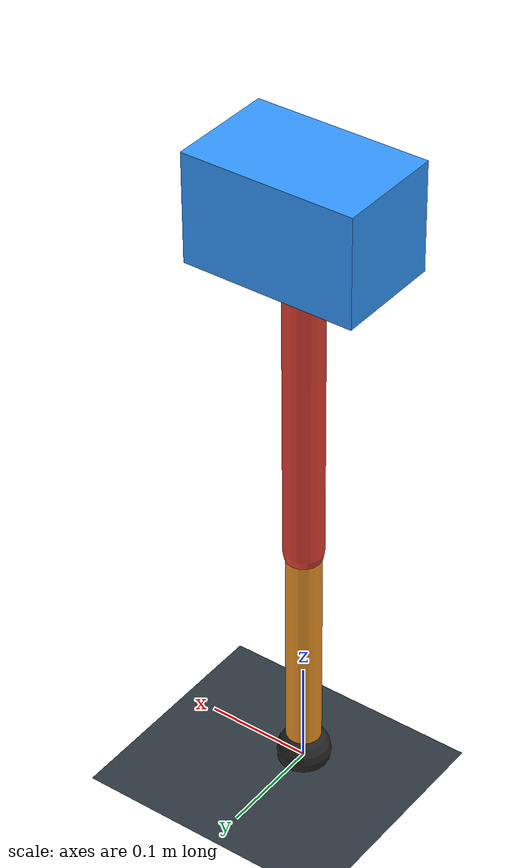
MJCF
<mujoco model="single_axis_two_bar">
  <compiler angle="radian" inertiafromgeom="true"/>
  <option timestep="0.001" integrator="implicitfast" gravity="0 0 -9.81"/>
  <default>
    <joint damping="0.08"/>
    <geom friction="1.2 0.01 0.0001" condim="3"/>
  </default>
  <worldbody>
    <geom name="floor" type="plane" size="5 5 0.1" rgba="0.18 0.22 0.25 1"/>
    <body name="carriage" pos="0 0 0.5721981493758594">
      <joint name="pole_slide" type="slide" axis="0 0 1"/>
      <geom name="payload" type="box" size="0.08 0.05 0.05" mass="2.419879510250581" rgba="0.2 0.6 1 1"/>
      <body name="thigh" pos="0 0 0">
        <joint name="hip" type="hinge" axis="0 1 0"/>
        <geom name="thigh_link" type="capsule" fromto="0 0 0 0 0 -0.3364395601890933" size="0.018" mass="0.23971763229128387" rgba="0.9 0.25 0.2 1"/>
        <body name="shank" pos="0 0 -0.3364395601890933">
          <joint name="knee" type="hinge" axis="0 1 0"/>
          <geom name="shank_link" type="capsule" fromto="0 0 0 0 0 -0.22768224329117412" size="0.016" mass="0.16222660690036672" rgba="0.95 0.6 0.15 1"/>
          <geom name="foot" type="sphere" pos="0 0 -0.22768224329117412" size="0.025" mass="0.03" rgba="0.15 0.15 0.15 1"/>
          <site name="toe" pos="0 0 -0.22768224329117412" size="0.008"/>
        </body>
      </body>
    </body>
  </worldbody>
  <actuator>
    <motor name="hip_motor" joint="hip" ctrlrange="-43.80079974088842 43.80079974088842"/>
    <motor name="knee_motor" joint="knee" ctrlrange="-88.91540849025131 88.91540849025131"/>
  </actuator>
</mujoco>
